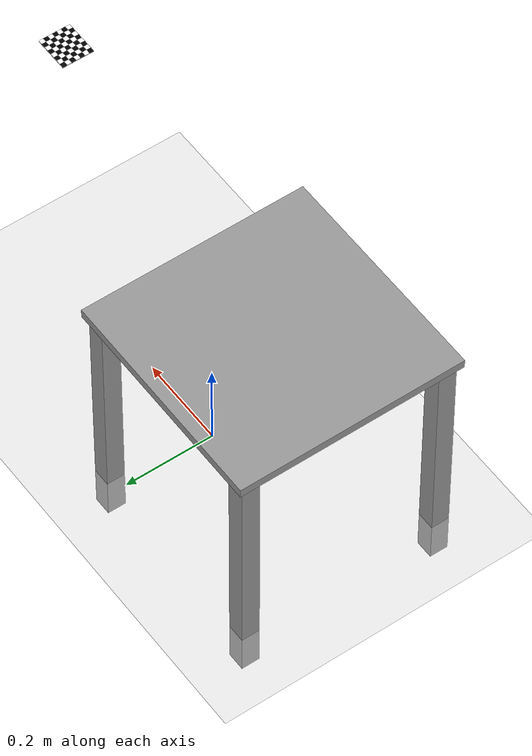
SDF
<sdf version="1.6">
 <world name="default">
  <plugin name="ros_link_attacher_plugin" filename="libgazebo_ros_link_attacher.so"/>
  <light name="sun" type="directional">
   <pose>0 0 10 0 -0 0</pose>
   <diffuse>0.8 0.8 0.8 1</diffuse>
   <specular>0.2 0.2 0.2 1</specular>
   <attenuation>
    <range>1000</range>
    <constant>0.9</constant>
    <linear>0.01</linear>
    <quadratic>0.001</quadratic>
   </attenuation>
   <direction>-0.5 0.1 -0.9</direction>
  </light>
  <model name="ground_plane">
   <static>1</static>
   <link name="link">
    <collision name="collision">
     <geometry><plane><normal>0 0 1</normal><size>100 100</size></plane></geometry>
     <surface><friction><ode><mu>100</mu><mu2>50</mu2></ode></friction></surface>
    </collision>
    <visual name="visual">
     <cast_shadows>0</cast_shadows>
     <geometry><plane><normal>0 0 1</normal><size>100 100</size></plane></geometry>
     <material>
      <script><uri>file://media/materials/scripts/gazebo.material</uri><name>Gazebo/Grey</name></script>
     </material>
    </visual>
   </link>
  </model>
  <gravity>0 0 -9.8</gravity>
  <magnetic_field>6e-06 2.3e-05 -4.2e-05</magnetic_field>
  <atmosphere type="adiabatic"/>
  <physics name="default_physics" default="0" type="ode">
   <max_step_size>0.001</max_step_size>
   <real_time_factor>1</real_time_factor>
   <real_time_update_rate>1000</real_time_update_rate>
  </physics>
  <scene><ambient>0.4 0.4 0.4 1</ambient><background>0.7 0.7 0.7 1</background><shadows>1</shadows></scene>
  <spherical_coordinates>
   <surface_model>EARTH_WGS84</surface_model>
   <latitude_deg>0</latitude_deg>
   <longitude_deg>0</longitude_deg>
   <elevation>0</elevation>
   <heading_deg>0</heading_deg>
  </spherical_coordinates>
  <model name="ur5_base">
   <static>1</static>
   <link name="top_plate">
    <pose>0 0 0.58 0 -0 0</pose>
    <collision name="top_plate_collision">
     <geometry><box><size>0.5 0.5 0.02</size></box></geometry>
     <surface><contact><collide_bitmask>1</collide_bitmask></contact></surface>
    </collision>
    <visual name="top_plate_visual">
     <geometry><box><size>0.5 0.5 0.02</size></box></geometry>
     <material>
      <script><uri>file://media/materials/scripts/gazebo.material</uri><name>Gazebo/Grey</name></script>
     </material>
    </visual>
   </link>
   <link name="leg1">
    <pose>0.22 0.22 0.285 0 -0 0</pose>
    <collision name="leg1_collision"><geometry><box><size>0.04 0.04 0.57</size></box></geometry></collision>
    <visual name="leg1_visual">
     <geometry><box><size>0.04 0.04 0.57</size></box></geometry>
     <material>
      <script><uri>file://media/materials/scripts/gazebo.material</uri><name>Gazebo/Grey</name></script>
     </material>
    </visual>
   </link>
   <link name="leg2">
    <pose>-0.22 0.22 0.285 0 -0 0</pose>
    <collision name="leg2_collision"><geometry><box><size>0.04 0.04 0.57</size></box></geometry></collision>
    <visual name="leg2_visual">
     <geometry><box><size>0.04 0.04 0.57</size></box></geometry>
     <material>
      <script><uri>file://media/materials/scripts/gazebo.material</uri><name>Gazebo/Grey</name></script>
     </material>
    </visual>
   </link>
   <link name="leg3">
    <pose>0.22 -0.22 0.285 0 -0 0</pose>
    <collision name="leg3_collision"><geometry><box><size>0.04 0.04 0.57</size></box></geometry></collision>
    <visual name="leg3_visual">
     <geometry><box><size>0.04 0.04 0.57</size></box></geometry>
     <material>
      <script><uri>file://media/materials/scripts/gazebo.material</uri><name>Gazebo/Grey</name></script>
     </material>
    </visual>
   </link>
   <link name="leg4">
    <pose>-0.22 -0.22 0.285 0 -0 0</pose>
    <collision name="leg4_collision"><geometry><box><size>0.04 0.04 0.57</size></box></geometry></collision>
    <visual name="leg4_visual">
     <geometry><box><size>0.04 0.04 0.57</size></box></geometry>
     <material>
      <script><uri>file://media/materials/scripts/gazebo.material</uri><name>Gazebo/Grey</name></script>
     </material>
    </visual>
   </link>
   <pose>-0.1759 -0.012384 -0.095642 0 -0 0</pose>
  </model>
  <audio><device>default</device></audio>
  <model name="small_checkerboard">
   <pose>0.458983 -0.052033 0.659394 -0.000172 -5.9e-05 0</pose>
   <static>0</static>
   <link name="small_checkerboard::small_checkerboard">
    <inertial>
     <mass>0.01</mass>
     <inertia><ixx>0.083</ixx><ixy>0</ixy><ixz>0</ixz><iyy>0.083</iyy><iyz>0</iyz><izz>0.083</izz></inertia>
    </inertial>
    <collision name="collision"><geometry><box><size>0.01 0.01 0.002</size></box></geometry></collision>
    <visual name="sqr11">
     <geometry><box><size>0.01 0.01 0.002</size></box></geometry>
     <material>
      <ambient>0 0 0 1</ambient>
      <diffuse>0 0 0 1</diffuse>
      <specular>0.1 0.1 0.1 1</specular>
      <emissive>0 0 0 0</emissive>
     </material>
    </visual>
    <visual name="sqr12">
     <pose>0.01 0 0 0 -0 0</pose>
     <geometry><box><size>0.01 0.01 0.002</size></box></geometry>
     <material>
      <ambient>1 1 1 1</ambient>
      <diffuse>1 1 1 1</diffuse>
      <specular>0.1 0.1 0.1 1</specular>
      <emissive>0 0 0 0</emissive>
     </material>
    </visual>
    <visual name="sqr13">
     <pose>0.02 0 0 0 -0 0</pose>
     <geometry><box><size>0.01 0.01 0.002</size></box></geometry>
     <material>
      <ambient>0 0 0 1</ambient>
      <diffuse>0 0 0 1</diffuse>
      <specular>0.1 0.1 0.1 1</specular>
      <emissive>0 0 0 0</emissive>
     </material>
    </visual>
    <visual name="sqr14">
     <pose>0.03 0 0 0 -0 0</pose>
     <geometry><box><size>0.01 0.01 0.002</size></box></geometry>
     <material>
      <ambient>1 1 1 1</ambient>
      <diffuse>1 1 1 1</diffuse>
      <specular>0.1 0.1 0.1 1</specular>
      <emissive>0 0 0 0</emissive>
     </material>
    </visual>
    <visual name="sqr15">
     <pose>0.04 0 0 0 -0 0</pose>
     <geometry><box><size>0.01 0.01 0.002</size></box></geometry>
     <material>
      <ambient>0 0 0 1</ambient>
      <diffuse>0 0 0 1</diffuse>
      <specular>0.1 0.1 0.1 1</specular>
      <emissive>0 0 0 0</emissive>
     </material>
    </visual>
    <visual name="sqr16">
     <pose>0.05 0 0 0 -0 0</pose>
     <geometry><box><size>0.01 0.01 0.002</size></box></geometry>
     <material>
      <ambient>1 1 1 1</ambient>
      <diffuse>1 1 1 1</diffuse>
      <specular>0.1 0.1 0.1 1</specular>
      <emissive>0 0 0 0</emissive>
     </material>
    </visual>
    <visual name="sqr17">
     <pose>0.06 0 0 0 -0 0</pose>
     <geometry><box><size>0.01 0.01 0.002</size></box></geometry>
     <material>
      <ambient>0 0 0 1</ambient>
      <diffuse>0 0 0 1</diffuse>
      <specular>0.1 0.1 0.1 1</specular>
      <emissive>0 0 0 0</emissive>
     </material>
    </visual>
    <visual name="sqr18">
     <pose>0.07 0 0 0 -0 0</pose>
     <geometry><box><size>0.01 0.01 0.002</size></box></geometry>
     <material>
      <ambient>1 1 1 1</ambient>
      <diffuse>1 1 1 1</diffuse>
      <specular>0.1 0.1 0.1 1</specular>
      <emissive>0 0 0 0</emissive>
     </material>
    </visual>
    <visual name="sqr31">
     <pose>0 0.02 0 0 -0 0</pose>
     <geometry><box><size>0.01 0.01 0.002</size></box></geometry>
     <material>
      <ambient>0 0 0 1</ambient>
      <diffuse>0 0 0 1</diffuse>
      <specular>0.1 0.1 0.1 1</specular>
      <emissive>0 0 0 0</emissive>
     </material>
    </visual>
    <visual name="sqr32">
     <pose>0.01 0.02 0 0 -0 0</pose>
     <geometry><box><size>0.01 0.01 0.002</size></box></geometry>
     <material>
      <ambient>1 1 1 1</ambient>
      <diffuse>1 1 1 1</diffuse>
      <specular>0.1 0.1 0.1 1</specular>
      <emissive>0 0 0 0</emissive>
     </material>
    </visual>
    <visual name="sqr33">
     <pose>0.02 0.02 0 0 -0 0</pose>
     <geometry><box><size>0.01 0.01 0.002</size></box></geometry>
     <material>
      <ambient>0 0 0 1</ambient>
      <diffuse>0 0 0 1</diffuse>
      <specular>0.1 0.1 0.1 1</specular>
      <emissive>0 0 0 0</emissive>
     </material>
    </visual>
    <visual name="sqr34">
     <pose>0.03 0.02 0 0 -0 0</pose>
     <geometry><box><size>0.01 0.01 0.002</size></box></geometry>
     <material>
      <ambient>1 1 1 1</ambient>
      <diffuse>1 1 1 1</diffuse>
      <specular>0.1 0.1 0.1 1</specular>
      <emissive>0 0 0 0</emissive>
     </material>
    </visual>
    <visual name="sqr35">
     <pose>0.04 0.02 0 0 -0 0</pose>
     <geometry><box><size>0.01 0.01 0.002</size></box></geometry>
     <material>
      <ambient>0 0 0 1</ambient>
      <diffuse>0 0 0 1</diffuse>
      <specular>0.1 0.1 0.1 1</specular>
      <emissive>0 0 0 0</emissive>
     </material>
    </visual>
    <visual name="sqr36">
     <pose>0.05 0.02 0 0 -0 0</pose>
     <geometry><box><size>0.01 0.01 0.002</size></box></geometry>
     <material>
      <ambient>1 1 1 1</ambient>
      <diffuse>1 1 1 1</diffuse>
      <specular>0.1 0.1 0.1 1</specular>
      <emissive>0 0 0 0</emissive>
     </material>
    </visual>
    <visual name="sqr37">
     <pose>0.06 0.02 0 0 -0 0</pose>
     <geometry><box><size>0.01 0.01 0.002</size></box></geometry>
     <material>
      <ambient>0 0 0 1</ambient>
      <diffuse>0 0 0 1</diffuse>
      <specular>0.1 0.1 0.1 1</specular>
      <emissive>0 0 0 0</emissive>
     </material>
    </visual>
    <visual name="sqr38">
     <pose>0.07 0.02 0 0 -0 0</pose>
     <geometry><box><size>0.01 0.01 0.002</size></box></geometry>
     <material>
      <ambient>1 1 1 1</ambient>
      <diffuse>1 1 1 1</diffuse>
      <specular>0.1 0.1 0.1 1</specular>
      <emissive>0 0 0 0</emissive>
     </material>
    </visual>
    <visual name="sqr51">
     <pose>0 0.04 0 0 -0 0</pose>
     <geometry><box><size>0.01 0.01 0.002</size></box></geometry>
     <material>
      <ambient>0 0 0 1</ambient>
      <diffuse>0 0 0 1</diffuse>
      <specular>0.1 0.1 0.1 1</specular>
      <emissive>0 0 0 0</emissive>
     </material>
    </visual>
    <visual name="sqr52">
     <pose>0.01 0.04 0 0 -0 0</pose>
     <geometry><box><size>0.01 0.01 0.002</size></box></geometry>
     <material>
      <ambient>1 1 1 1</ambient>
      <diffuse>1 1 1 1</diffuse>
      <specular>0.1 0.1 0.1 1</specular>
      <emissive>0 0 0 0</emissive>
     </material>
    </visual>
    <visual name="sqr53">
     <pose>0.02 0.04 0 0 -0 0</pose>
     <geometry><box><size>0.01 0.01 0.002</size></box></geometry>
     <material>
      <ambient>0 0 0 1</ambient>
      <diffuse>0 0 0 1</diffuse>
      <specular>0.1 0.1 0.1 1</specular>
      <emissive>0 0 0 0</emissive>
     </material>
    </visual>
    <visual name="sqr54">
     <pose>0.03 0.04 0 0 -0 0</pose>
     <geometry><box><size>0.01 0.01 0.002</size></box></geometry>
     <material>
      <ambient>1 1 1 1</ambient>
      <diffuse>1 1 1 1</diffuse>
      <specular>0.1 0.1 0.1 1</specular>
      <emissive>0 0 0 0</emissive>
     </material>
    </visual>
    <visual name="sqr55">
     <pose>0.04 0.04 0 0 -0 0</pose>
     <geometry><box><size>0.01 0.01 0.002</size></box></geometry>
     <material>
      <ambient>0 0 0 1</ambient>
      <diffuse>0 0 0 1</diffuse>
      <specular>0.1 0.1 0.1 1</specular>
      <emissive>0 0 0 0</emissive>
     </material>
    </visual>
    <visual name="sqr56">
     <pose>0.05 0.04 0 0 -0 0</pose>
     <geometry><box><size>0.01 0.01 0.002</size></box></geometry>
     <material>
      <ambient>1 1 1 1</ambient>
      <diffuse>1 1 1 1</diffuse>
      <specular>0.1 0.1 0.1 1</specular>
      <emissive>0 0 0 0</emissive>
     </material>
    </visual>
    <visual name="sqr57">
     <pose>0.06 0.04 0 0 -0 0</pose>
     <geometry><box><size>0.01 0.01 0.002</size></box></geometry>
     <material>
      <ambient>0 0 0 1</ambient>
      <diffuse>0 0 0 1</diffuse>
      <specular>0.1 0.1 0.1 1</specular>
      <emissive>0 0 0 0</emissive>
     </material>
    </visual>
    <visual name="sqr58">
     <pose>0.07 0.04 0 0 -0 0</pose>
     <geometry><box><size>0.01 0.01 0.002</size></box></geometry>
     <material>
      <ambient>1 1 1 1</ambient>
      <diffuse>1 1 1 1</diffuse>
      <specular>0.1 0.1 0.1 1</specular>
      <emissive>0 0 0 0</emissive>
     </material>
    </visual>
    <visual name="sqr71">
     <pose>0 0.06 0 0 -0 0</pose>
     <geometry><box><size>0.01 0.01 0.002</size></box></geometry>
     <material>
      <ambient>0 0 0 1</ambient>
      <diffuse>0 0 0 1</diffuse>
      <specular>0.1 0.1 0.1 1</specular>
      <emissive>0 0 0 0</emissive>
     </material>
    </visual>
    <visual name="sqr72">
     <pose>0.01 0.06 0 0 -0 0</pose>
     <geometry><box><size>0.01 0.01 0.002</size></box></geometry>
     <material>
      <ambient>1 1 1 1</ambient>
      <diffuse>1 1 1 1</diffuse>
      <specular>0.1 0.1 0.1 1</specular>
      <emissive>0 0 0 0</emissive>
     </material>
    </visual>
    <visual name="sqr73">
     <pose>0.02 0.06 0 0 -0 0</pose>
     <geometry><box><size>0.01 0.01 0.002</size></box></geometry>
     <material>
      <ambient>0 0 0 1</ambient>
      <diffuse>0 0 0 1</diffuse>
      <specular>0.1 0.1 0.1 1</specular>
      <emissive>0 0 0 0</emissive>
     </material>
    </visual>
    <visual name="sqr74">
     <pose>0.03 0.06 0 0 -0 0</pose>
     <geometry><box><size>0.01 0.01 0.002</size></box></geometry>
     <material>
      <ambient>1 1 1 1</ambient>
      <diffuse>1 1 1 1</diffuse>
      <specular>0.1 0.1 0.1 1</specular>
      <emissive>0 0 0 0</emissive>
     </material>
    </visual>
    <visual name="sqr75">
     <pose>0.04 0.06 0 0 -0 0</pose>
     <geometry><box><size>0.01 0.01 0.002</size></box></geometry>
     <material>
      <ambient>0 0 0 1</ambient>
      <diffuse>0 0 0 1</diffuse>
      <specular>0.1 0.1 0.1 1</specular>
      <emissive>0 0 0 0</emissive>
     </material>
    </visual>
    <visual name="sqr76">
     <pose>0.05 0.06 0 0 -0 0</pose>
     <geometry><box><size>0.01 0.01 0.002</size></box></geometry>
     <material>
      <ambient>1 1 1 1</ambient>
      <diffuse>1 1 1 1</diffuse>
      <specular>0.1 0.1 0.1 1</specular>
      <emissive>0 0 0 0</emissive>
     </material>
    </visual>
    <visual name="sqr77">
     <pose>0.06 0.06 0 0 -0 0</pose>
     <geometry><box><size>0.01 0.01 0.002</size></box></geometry>
     <material>
      <ambient>0 0 0 1</ambient>
      <diffuse>0 0 0 1</diffuse>
      <specular>0.1 0.1 0.1 1</specular>
      <emissive>0 0 0 0</emissive>
     </material>
    </visual>
    <visual name="sqr78">
     <pose>0.07 0.06 0 0 -0 0</pose>
     <geometry><box><size>0.01 0.01 0.002</size></box></geometry>
     <material>
      <ambient>1 1 1 1</ambient>
      <diffuse>1 1 1 1</diffuse>
      <specular>0.1 0.1 0.1 1</specular>
      <emissive>0 0 0 0</emissive>
     </material>
    </visual>
    <visual name="sqr21">
     <pose>0 0.01 0 0 -0 0</pose>
     <geometry><box><size>0.01 0.01 0.002</size></box></geometry>
     <material>
      <ambient>1 1 1 1</ambient>
      <diffuse>1 1 1 1</diffuse>
      <specular>0.1 0.1 0.1 1</specular>
      <emissive>0 0 0 0</emissive>
     </material>
    </visual>
    <visual name="sqr22">
     <pose>0.01 0.01 0 0 -0 0</pose>
     <geometry><box><size>0.01 0.01 0.002</size></box></geometry>
     <material>
      <ambient>0 0 0 1</ambient>
      <diffuse>0 0 0 1</diffuse>
      <specular>0.1 0.1 0.1 1</specular>
      <emissive>0 0 0 0</emissive>
     </material>
    </visual>
    <visual name="sqr23">
     <pose>0.02 0.01 0 0 -0 0</pose>
     <geometry><box><size>0.01 0.01 0.002</size></box></geometry>
     <material>
      <ambient>1 1 1 1</ambient>
      <diffuse>1 1 1 1</diffuse>
      <specular>0.1 0.1 0.1 1</specular>
      <emissive>0 0 0 0</emissive>
     </material>
    </visual>
    <visual name="sqr24">
     <pose>0.03 0.01 0 0 -0 0</pose>
     <geometry><box><size>0.01 0.01 0.002</size></box></geometry>
     <material>
      <ambient>0 0 0 1</ambient>
      <diffuse>0 0 0 1</diffuse>
      <specular>0.1 0.1 0.1 1</specular>
      <emissive>0 0 0 0</emissive>
     </material>
    </visual>
    <visual name="sqr25">
     <pose>0.04 0.01 0 0 -0 0</pose>
     <geometry><box><size>0.01 0.01 0.002</size></box></geometry>
     <material>
      <ambient>1 1 1 1</ambient>
      <diffuse>1 1 1 1</diffuse>
      <specular>0.1 0.1 0.1 1</specular>
      <emissive>0 0 0 0</emissive>
     </material>
    </visual>
    <visual name="sqr26">
     <pose>0.05 0.01 0 0 -0 0</pose>
     <geometry><box><size>0.01 0.01 0.002</size></box></geometry>
     <material>
      <ambient>0 0 0 1</ambient>
      <diffuse>0 0 0 1</diffuse>
      <specular>0.1 0.1 0.1 1</specular>
      <emissive>0 0 0 0</emissive>
     </material>
    </visual>
    <visual name="sqr27">
     <pose>0.06 0.01 0 0 -0 0</pose>
     <geometry><box><size>0.01 0.01 0.002</size></box></geometry>
     <material>
      <ambient>1 1 1 1</ambient>
      <diffuse>1 1 1 1</diffuse>
      <specular>0.1 0.1 0.1 1</specular>
      <emissive>0 0 0 0</emissive>
     </material>
    </visual>
    <visual name="sqr28">
     <pose>0.07 0.01 0 0 -0 0</pose>
     <geometry><box><size>0.01 0.01 0.002</size></box></geometry>
     <material>
      <ambient>0 0 0 1</ambient>
      <diffuse>0 0 0 1</diffuse>
      <specular>0.1 0.1 0.1 1</specular>
      <emissive>0 0 0 0</emissive>
     </material>
    </visual>
    <visual name="sqr41">
     <pose>0 0.03 0 0 -0 0</pose>
     <geometry><box><size>0.01 0.01 0.002</size></box></geometry>
     <material>
      <ambient>1 1 1 1</ambient>
      <diffuse>1 1 1 1</diffuse>
      <specular>0.1 0.1 0.1 1</specular>
      <emissive>0 0 0 0</emissive>
     </material>
    </visual>
    <visual name="sqr42">
     <pose>0.01 0.03 0 0 -0 0</pose>
     <geometry><box><size>0.01 0.01 0.002</size></box></geometry>
     <material>
      <ambient>0 0 0 1</ambient>
      <diffuse>0 0 0 1</diffuse>
      <specular>0.1 0.1 0.1 1</specular>
      <emissive>0 0 0 0</emissive>
     </material>
    </visual>
    <visual name="sqr43">
     <pose>0.02 0.03 0 0 -0 0</pose>
     <geometry><box><size>0.01 0.01 0.002</size></box></geometry>
     <material>
      <ambient>1 1 1 1</ambient>
      <diffuse>1 1 1 1</diffuse>
      <specular>0.1 0.1 0.1 1</specular>
      <emissive>0 0 0 0</emissive>
     </material>
    </visual>
    <visual name="sqr44">
     <pose>0.03 0.03 0 0 -0 0</pose>
     <geometry><box><size>0.01 0.01 0.002</size></box></geometry>
     <material>
      <ambient>0 0 0 1</ambient>
      <diffuse>0 0 0 1</diffuse>
      <specular>0.1 0.1 0.1 1</specular>
      <emissive>0 0 0 0</emissive>
     </material>
    </visual>
    <visual name="sqr45">
     <pose>0.04 0.03 0 0 -0 0</pose>
     <geometry><box><size>0.01 0.01 0.002</size></box></geometry>
     <material>
      <ambient>1 1 1 1</ambient>
      <diffuse>1 1 1 1</diffuse>
      <specular>0.1 0.1 0.1 1</specular>
      <emissive>0 0 0 0</emissive>
     </material>
    </visual>
    <visual name="sqr46">
     <pose>0.05 0.03 0 0 -0 0</pose>
     <geometry><box><size>0.01 0.01 0.002</size></box></geometry>
     <material>
      <ambient>0 0 0 1</ambient>
      <diffuse>0 0 0 1</diffuse>
      <specular>0.1 0.1 0.1 1</specular>
      <emissive>0 0 0 0</emissive>
     </material>
    </visual>
    <visual name="sqr47">
     <pose>0.06 0.03 0 0 -0 0</pose>
     <geometry><box><size>0.01 0.01 0.002</size></box></geometry>
     <material>
      <ambient>1 1 1 1</ambient>
      <diffuse>1 1 1 1</diffuse>
      <specular>0.1 0.1 0.1 1</specular>
      <emissive>0 0 0 0</emissive>
     </material>
    </visual>
    <visual name="sqr48">
     <pose>0.07 0.03 0 0 -0 0</pose>
     <geometry><box><size>0.01 0.01 0.002</size></box></geometry>
     <material>
      <ambient>0 0 0 1</ambient>
      <diffuse>0 0 0 1</diffuse>
      <specular>0.1 0.1 0.1 1</specular>
      <emissive>0 0 0 0</emissive>
     </material>
    </visual>
    <visual name="sqr61">
     <pose>0 0.05 0 0 -0 0</pose>
     <geometry><box><size>0.01 0.01 0.002</size></box></geometry>
     <material>
      <ambient>1 1 1 1</ambient>
      <diffuse>1 1 1 1</diffuse>
      <specular>0.1 0.1 0.1 1</specular>
      <emissive>0 0 0 0</emissive>
     </material>
    </visual>
    <visual name="sqr62">
     <pose>0.01 0.05 0 0 -0 0</pose>
     <geometry><box><size>0.01 0.01 0.002</size></box></geometry>
     <material>
      <ambient>0 0 0 1</ambient>
      <diffuse>0 0 0 1</diffuse>
      <specular>0.1 0.1 0.1 1</specular>
      <emissive>0 0 0 0</emissive>
     </material>
    </visual>
    <visual name="sqr63">
     <pose>0.02 0.05 0 0 -0 0</pose>
     <geometry><box><size>0.01 0.01 0.002</size></box></geometry>
     <material>
      <ambient>1 1 1 1</ambient>
      <diffuse>1 1 1 1</diffuse>
      <specular>0.1 0.1 0.1 1</specular>
      <emissive>0 0 0 0</emissive>
     </material>
    </visual>
    <visual name="sqr64">
     <pose>0.03 0.05 0 0 -0 0</pose>
     <geometry><box><size>0.01 0.01 0.002</size></box></geometry>
     <material>
      <ambient>0 0 0 1</ambient>
      <diffuse>0 0 0 1</diffuse>
      <specular>0.1 0.1 0.1 1</specular>
      <emissive>0 0 0 0</emissive>
     </material>
    </visual>
    <visual name="sqr65">
     <pose>0.04 0.05 0 0 -0 0</pose>
     <geometry><box><size>0.01 0.01 0.002</size></box></geometry>
     <material>
      <ambient>1 1 1 1</ambient>
      <diffuse>1 1 1 1</diffuse>
      <specular>0.1 0.1 0.1 1</specular>
      <emissive>0 0 0 0</emissive>
     </material>
    </visual>
    <visual name="sqr66">
     <pose>0.05 0.05 0 0 -0 0</pose>
     <geometry><box><size>0.01 0.01 0.002</size></box></geometry>
     <material>
      <ambient>0 0 0 1</ambient>
      <diffuse>0 0 0 1</diffuse>
      <specular>0.1 0.1 0.1 1</specular>
      <emissive>0 0 0 0</emissive>
     </material>
    </visual>
    <visual name="sqr67">
     <pose>0.06 0.05 0 0 -0 0</pose>
     <geometry><box><size>0.01 0.01 0.002</size></box></geometry>
     <material>
      <ambient>1 1 1 1</ambient>
      <diffuse>1 1 1 1</diffuse>
      <specular>0.1 0.1 0.1 1</specular>
      <emissive>0 0 0 0</emissive>
     </material>
    </visual>
    <visual name="sqr68">
     <pose>0.07 0.05 0 0 -0 0</pose>
     <geometry><box><size>0.01 0.01 0.002</size></box></geometry>
     <material>
      <ambient>0 0 0 1</ambient>
      <diffuse>0 0 0 1</diffuse>
      <specular>0.1 0.1 0.1 1</specular>
      <emissive>0 0 0 0</emissive>
     </material>
    </visual>
    <kinematic>1</kinematic>
   </link>
  </model>
 </world>
</sdf>
